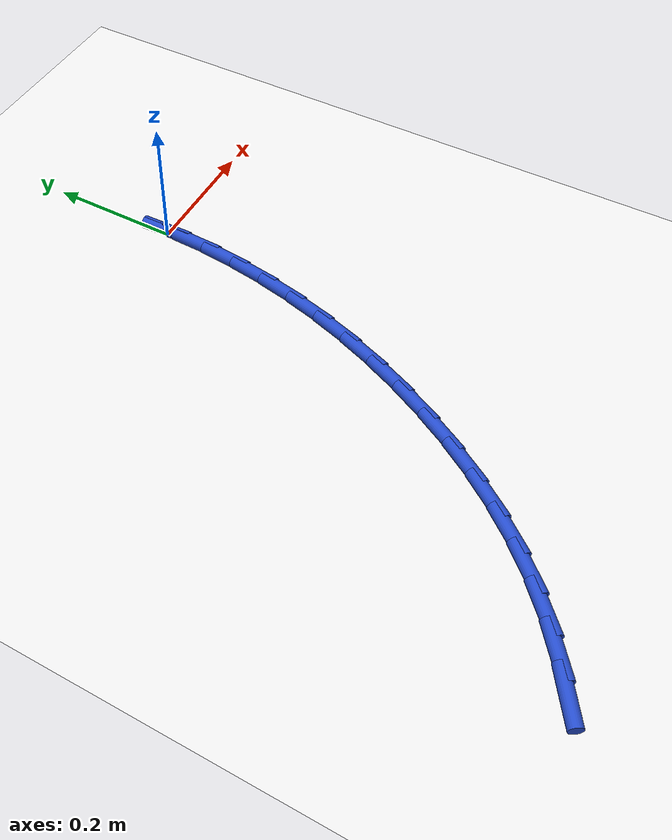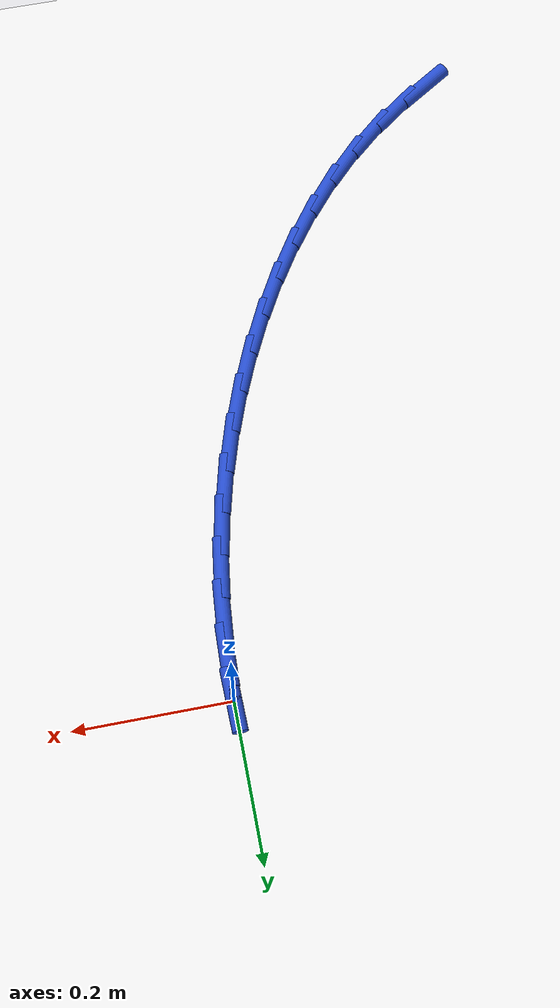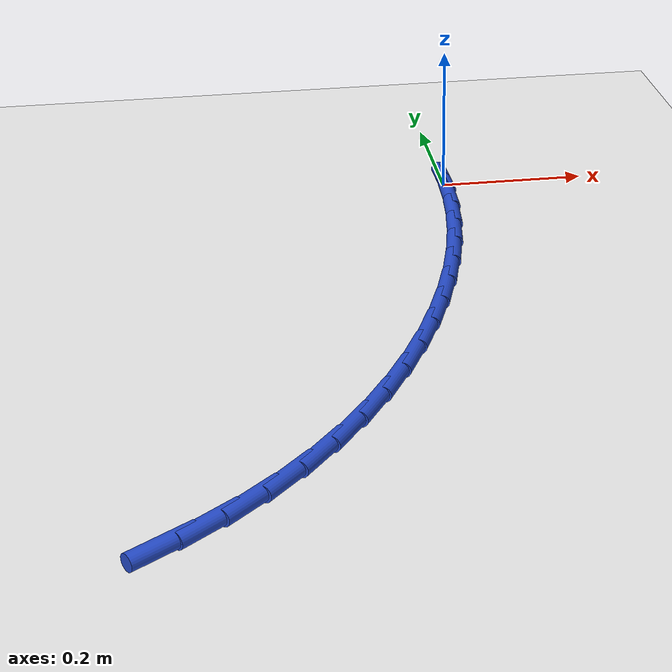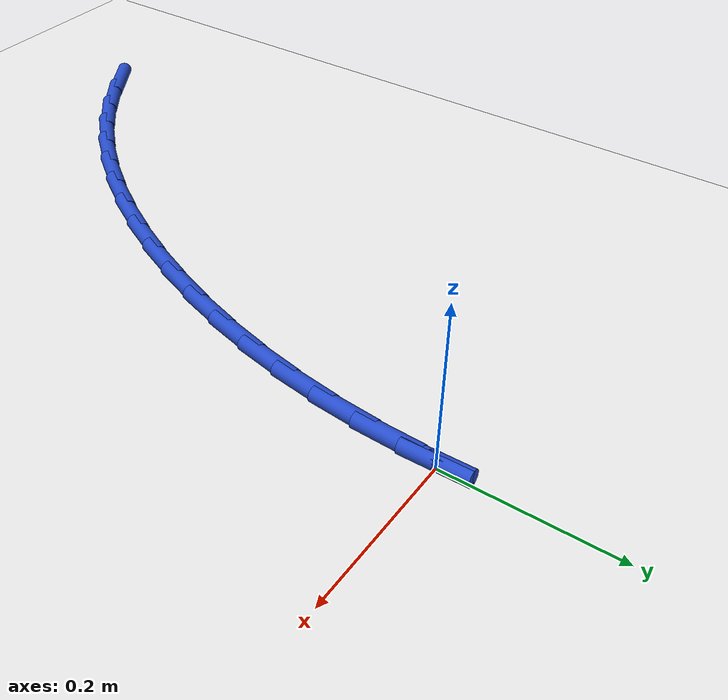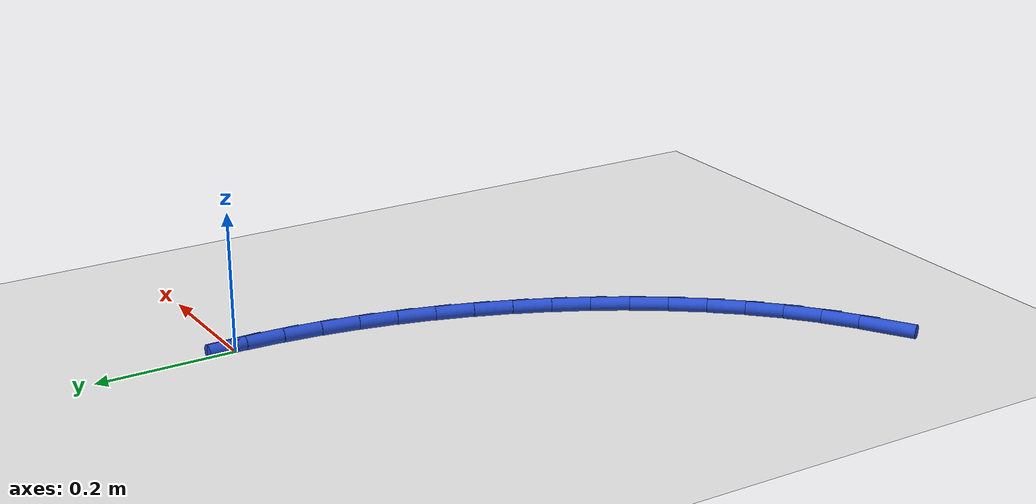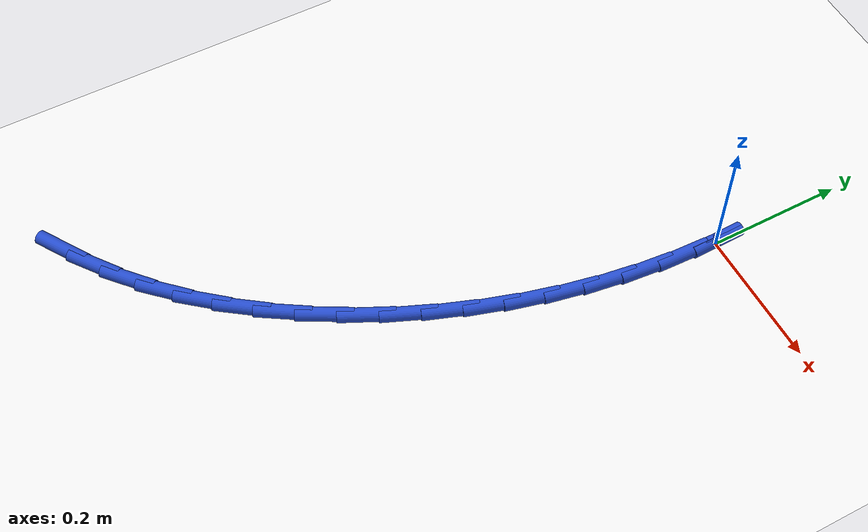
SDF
<sdf version="1.6">
 <world name="default">
  <model name="ground_plane">
   <static>1</static>
   <link name="link">
    <collision name="collision">
     <geometry><plane><normal>0 0 1</normal><size>100 100</size></plane></geometry>
     <surface><friction><ode><mu>100</mu><mu2>50</mu2></ode></friction></surface>
    </collision>
    <visual name="visual">
     <cast_shadows>0</cast_shadows>
     <geometry><plane><normal>0 0 1</normal><size>100 100</size></plane></geometry>
     <material>
      <script><uri>file://media/materials/scripts/gazebo.material</uri><name>Gazebo/WhiteGlow</name></script>
     </material>
    </visual>
   </link>
  </model>
  <model name="line">
   <link name="link_0">
    <pose>4.683753385137379e-17 -2.7755575615628914e-17 0.01 0 1.57 -1.5506919938841304</pose>
    <collision name="collision">
     <geometry><cylinder><radius>0.01</radius><length>0.08</length></cylinder></geometry>
    </collision>
    <visual name="visual">
     <material>
      <script><name>Gazebo/Blue</name><uri>file://media/materials/scripts/gazebo.material</uri></script>
     </material>
     <geometry><cylinder><radius>0.01</radius><length>0.08</length></cylinder></geometry>
    </visual>
   </link>
   <link name="link_133">
    <pose>-0.4168143808625983 -0.801770785308708 0.01 0 1.57 0.5662251288744233</pose>
    <collision name="collision">
     <geometry><cylinder><radius>0.01</radius><length>0.08</length></cylinder></geometry>
    </collision>
    <visual name="visual">
     <material>
      <script><name>Gazebo/Blue</name><uri>file://media/materials/scripts/gazebo.material</uri></script>
     </material>
     <geometry><cylinder><radius>0.01</radius><length>0.08</length></cylinder></geometry>
    </visual>
   </link>
   <link name="link_134">
    <pose>-0.37092227873177364 -0.772599211771763 0.01 0 1.57 0.6375531064149368</pose>
    <collision name="collision">
     <geometry><cylinder><radius>0.01</radius><length>0.08</length></cylinder></geometry>
    </collision>
    <visual name="visual">
     <material>
      <script><name>Gazebo/Blue</name><uri>file://media/materials/scripts/gazebo.material</uri></script>
     </material>
     <geometry><cylinder><radius>0.01</radius><length>0.08</length></cylinder></geometry>
    </visual>
   </link>
   <link name="link_135">
    <pose>-0.3272688559228616 -0.74026305175852 0.01 0 1.57 0.720407778773368</pose>
    <collision name="collision">
     <geometry><cylinder><radius>0.01</radius><length>0.08</length></cylinder></geometry>
    </collision>
    <visual name="visual">
     <material>
      <script><name>Gazebo/Blue</name><uri>file://media/materials/scripts/gazebo.material</uri></script>
     </material>
     <geometry><cylinder><radius>0.01</radius><length>0.08</length></cylinder></geometry>
    </visual>
   </link>
   <link name="link_136">
    <pose>-0.28624123229316534 -0.7042494296089253 0.01 0 1.57 0.7996109678529639</pose>
    <collision name="collision">
     <geometry><cylinder><radius>0.01</radius><length>0.08</length></cylinder></geometry>
    </collision>
    <visual name="visual">
     <material>
      <script><name>Gazebo/Blue</name><uri>file://media/materials/scripts/gazebo.material</uri></script>
     </material>
     <geometry><cylinder><radius>0.01</radius><length>0.08</length></cylinder></geometry>
    </visual>
   </link>
   <link name="link_137">
    <pose>-0.24790764695760326 -0.6648104029110795 0.01 0 1.57 0.8726459782439181</pose>
    <collision name="collision">
     <geometry><cylinder><radius>0.01</radius><length>0.08</length></cylinder></geometry>
    </collision>
    <visual name="visual">
     <material>
      <script><name>Gazebo/Blue</name><uri>file://media/materials/scripts/gazebo.material</uri></script>
     </material>
     <geometry><cylinder><radius>0.01</radius><length>0.08</length></cylinder></geometry>
    </visual>
   </link>
   <link name="link_138">
    <pose>-0.21227458047273334 -0.6223461760941069 0.01 0 1.57 0.9400603835740698</pose>
    <collision name="collision">
     <geometry><cylinder><radius>0.01</radius><length>0.08</length></cylinder></geometry>
    </collision>
    <visual name="visual">
     <material>
      <script><name>Gazebo/Blue</name><uri>file://media/materials/scripts/gazebo.material</uri></script>
     </material>
     <geometry><cylinder><radius>0.01</radius><length>0.08</length></cylinder></geometry>
    </visual>
   </link>
   <link name="link_139">
    <pose>-0.1793485133951117 -0.5772569535871295 0.01 0 1.57 1.0025091162237652</pose>
    <collision name="collision">
     <geometry><cylinder><radius>0.01</radius><length>0.08</length></cylinder></geometry>
    </collision>
    <visual name="visual">
     <material>
      <script><name>Gazebo/Blue</name><uri>file://media/materials/scripts/gazebo.material</uri></script>
     </material>
     <geometry><cylinder><radius>0.01</radius><length>0.08</length></cylinder></geometry>
    </visual>
   </link>
   <link name="link_140">
    <pose>-0.14913592628129682 -0.5299429398192722 0.01 0 1.57 1.0606952357720263</pose>
    <collision name="collision">
     <geometry><cylinder><radius>0.01</radius><length>0.08</length></cylinder></geometry>
    </collision>
    <visual name="visual">
     <material>
      <script><name>Gazebo/Blue</name><uri>file://media/materials/scripts/gazebo.material</uri></script>
     </material>
     <geometry><cylinder><radius>0.01</radius><length>0.08</length></cylinder></geometry>
    </visual>
   </link>
   <link name="link_141">
    <pose>-0.12164329968784499 -0.48080433921965715 0.01 0 1.57 1.1153350021207358</pose>
    <collision name="collision">
     <geometry><cylinder><radius>0.01</radius><length>0.08</length></cylinder></geometry>
    </collision>
    <visual name="visual">
     <material>
      <script><name>Gazebo/Blue</name><uri>file://media/materials/scripts/gazebo.material</uri></script>
     </material>
     <geometry><cylinder><radius>0.01</radius><length>0.08</length></cylinder></geometry>
    </visual>
   </link>
   <link name="link_142">
    <pose>-0.0968771141713141 -0.43024135621740833 0.01 0 1.57 1.1672146477438186</pose>
    <collision name="collision">
     <geometry><cylinder><radius>0.01</radius><length>0.08</length></cylinder></geometry>
    </collision>
    <visual name="visual">
     <material>
      <script><name>Gazebo/Blue</name><uri>file://media/materials/scripts/gazebo.material</uri></script>
     </material>
     <geometry><cylinder><radius>0.01</radius><length>0.08</length></cylinder></geometry>
    </visual>
   </link>
   <link name="link_143">
    <pose>-0.07484471403468443 -0.37864583443026906 0.01 0 1.57 1.2182862586575545</pose>
    <collision name="collision">
     <geometry><cylinder><radius>0.01</radius><length>0.08</length></cylinder></geometry>
    </collision>
    <visual name="visual">
     <material>
      <script><name>Gazebo/Blue</name><uri>file://media/materials/scripts/gazebo.material</uri></script>
     </material>
     <geometry><cylinder><radius>0.01</radius><length>0.08</length></cylinder></geometry>
    </visual>
   </link>
   <link name="link_144">
    <pose>-0.055569852312196945 -0.3262507857824493 0.01 0 1.57 1.2699035670026575</pose>
    <collision name="collision">
     <geometry><cylinder><radius>0.01</radius><length>0.08</length></cylinder></geometry>
    </collision>
    <visual name="visual">
     <material>
      <script><name>Gazebo/Blue</name><uri>file://media/materials/scripts/gazebo.material</uri></script>
     </material>
     <geometry><cylinder><radius>0.01</radius><length>0.08</length></cylinder></geometry>
    </visual>
   </link>
   <link name="link_145">
    <pose>-0.039090972792558173 -0.2731470200148494 0.01 0 1.57 1.3221027788875435</pose>
    <collision name="collision">
     <geometry><cylinder><radius>0.01</radius><length>0.08</length></cylinder></geometry>
    </collision>
    <visual name="visual">
     <material>
      <script><name>Gazebo/Blue</name><uri>file://media/materials/scripts/gazebo.material</uri></script>
     </material>
     <geometry><cylinder><radius>0.01</radius><length>0.08</length></cylinder></geometry>
    </visual>
   </link>
   <link name="link_146">
    <pose>-0.025447038097565 -0.21942032471660683 0.01 0 1.57 1.3748673267448215</pose>
    <collision name="collision">
     <geometry><cylinder><radius>0.01</radius><length>0.08</length></cylinder></geometry>
    </collision>
    <visual name="visual">
     <material>
      <script><name>Gazebo/Blue</name><uri>file://media/materials/scripts/gazebo.material</uri></script>
     </material>
     <geometry><cylinder><radius>0.01</radius><length>0.08</length></cylinder></geometry>
    </visual>
   </link>
   <link name="link_147">
    <pose>-0.014677010849015166 -0.16515648747686135 0.01 0 1.57 1.4281703511714623</pose>
    <collision name="collision">
     <geometry><cylinder><radius>0.01</radius><length>0.08</length></cylinder></geometry>
    </collision>
    <visual name="visual">
     <material>
      <script><name>Gazebo/Blue</name><uri>file://media/materials/scripts/gazebo.material</uri></script>
     </material>
     <geometry><cylinder><radius>0.01</radius><length>0.08</length></cylinder></geometry>
    </visual>
   </link>
   <link name="link_148">
    <pose>-0.006819853668706194 -0.11044129588475302 0.01 0 1.57 1.4819737011137557</pose>
    <collision name="collision">
     <geometry><cylinder><radius>0.01</radius><length>0.08</length></cylinder></geometry>
    </collision>
    <visual name="visual">
     <material>
      <script><name>Gazebo/Blue</name><uri>file://media/materials/scripts/gazebo.material</uri></script>
     </material>
     <geometry><cylinder><radius>0.01</radius><length>0.08</length></cylinder></geometry>
    </visual>
   </link>
   <link name="link_149">
    <pose>-0.0019145291784352578 -0.05536053752941893 0.01 0 1.57 1.536227181230099</pose>
    <collision name="collision">
     <geometry><cylinder><radius>0.01</radius><length>0.08</length></cylinder></geometry>
    </collision>
    <visual name="visual">
     <material>
      <script><name>Gazebo/Blue</name><uri>file://media/materials/scripts/gazebo.material</uri></script>
     </material>
     <geometry><cylinder><radius>0.01</radius><length>0.08</length></cylinder></geometry>
    </visual>
   </link>
   <link name="link_150">
    <pose>3.9898639947466563e-17 0.0 0.01 0 1.57 -1.5507245342276157</pose>
    <collision name="collision">
     <geometry><cylinder><radius>0.01</radius><length>0.08</length></cylinder></geometry>
    </collision>
    <visual name="visual">
     <material>
      <script><name>Gazebo/Blue</name><uri>file://media/materials/scripts/gazebo.material</uri></script>
     </material>
     <geometry><cylinder><radius>0.01</radius><length>0.08</length></cylinder></geometry>
    </visual>
   </link>
  </model>
 </world>
</sdf>
